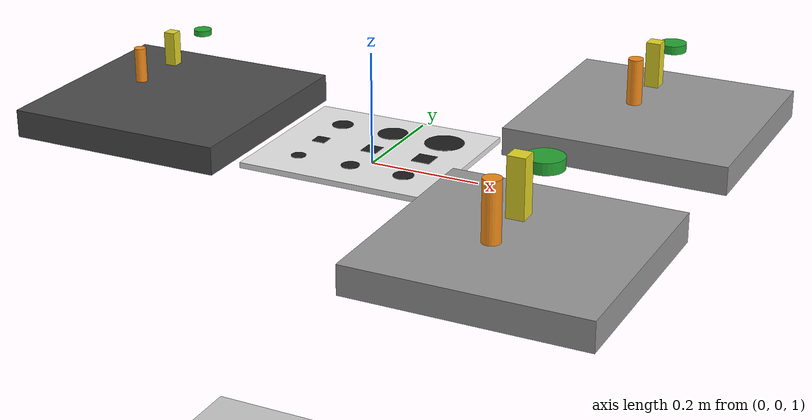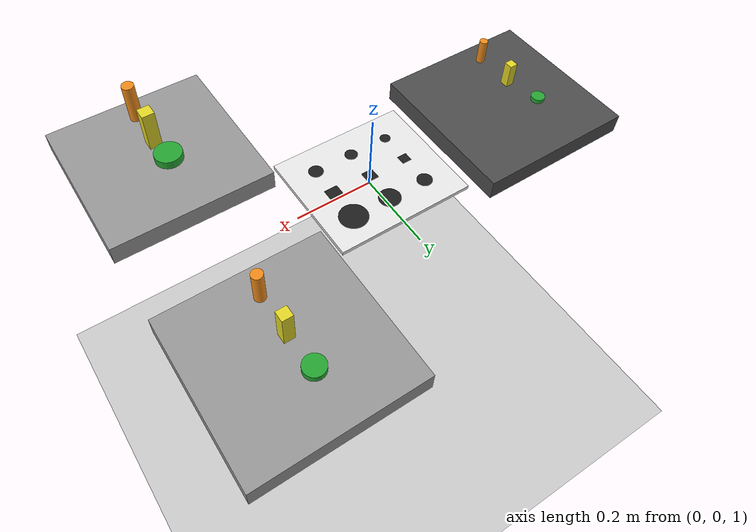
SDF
<sdf version="1.4">
 <world name="default">
  <include><uri>model://ground_plane</uri></include>
  <include><uri>model://sun</uri></include>
  <plugin name="gazebo_ros_state" filename="libgazebo_ros_state.so">
   <ros><namespace>/</namespace></ros>
   <update_rate>50</update_rate>
  </plugin>
  <plugin name="gazebo_link_attacher" filename="libgazebo_link_attacher.so"/>
  <model name="assembly_board_v1">
   <static>true</static>
   <pose>0 0 1.02 0 0 0</pose>
   <link name="link">
    <collision name="collision"><geometry><box><size>0.35 0.3 0.01</size></box></geometry></collision>
    <visual name="visual_top">
     <geometry><box><size>0.35 0.3 0.01</size></box></geometry>
     <material>
      <script><uri>file://media/materials/scripts/gazebo.material</uri><name>Gazebo/White</name></script>
     </material>
    </visual>
    <visual name="socket_SG">
     <pose>-0.10 0.08 0.006 0 0 0</pose>
     <geometry><cylinder><radius>0.019</radius><length>0.001</length></cylinder></geometry>
     <material>
      <script><uri>file://media/materials/scripts/gazebo.material</uri><name>Gazebo/Black</name></script>
     </material>
    </visual>
    <visual name="socket_MG">
     <pose>0.0 0.08 0.006 0 0 0</pose>
     <geometry><cylinder><radius>0.027</radius><length>0.001</length></cylinder></geometry>
     <material>
      <script><uri>file://media/materials/scripts/gazebo.material</uri><name>Gazebo/Black</name></script>
     </material>
    </visual>
    <visual name="socket_LG">
     <pose>0.10 0.08 0.006 0 0 0</pose>
     <geometry><cylinder><radius>0.035</radius><length>0.001</length></cylinder></geometry>
     <material>
      <script><uri>file://media/materials/scripts/gazebo.material</uri><name>Gazebo/Black</name></script>
     </material>
    </visual>
    <visual name="socket_SRP">
     <pose>-0.10 0.0 0.006 0 0 0</pose>
     <geometry><box><size>0.024 0.024 0.001</size></box></geometry>
     <material>
      <script><uri>file://media/materials/scripts/gazebo.material</uri><name>Gazebo/Black</name></script>
     </material>
    </visual>
    <visual name="socket_MRP">
     <pose>0.0 0.0 0.006 0 0 0</pose>
     <geometry><box><size>0.029 0.029 0.001</size></box></geometry>
     <material>
      <script><uri>file://media/materials/scripts/gazebo.material</uri><name>Gazebo/Black</name></script>
     </material>
    </visual>
    <visual name="socket_LRP">
     <pose>0.10 0.0 0.006 0 0 0</pose>
     <geometry><box><size>0.034 0.034 0.001</size></box></geometry>
     <material>
      <script><uri>file://media/materials/scripts/gazebo.material</uri><name>Gazebo/Black</name></script>
     </material>
    </visual>
    <visual name="socket_SCP">
     <pose>-0.10 -0.08 0.006 0 0 0</pose>
     <geometry><cylinder><radius>0.013</radius><length>0.001</length></cylinder></geometry>
     <material>
      <script><uri>file://media/materials/scripts/gazebo.material</uri><name>Gazebo/Black</name></script>
     </material>
    </visual>
    <visual name="socket_MCP">
     <pose>0.0 -0.08 0.006 0 0 0</pose>
     <geometry><cylinder><radius>0.016</radius><length>0.001</length></cylinder></geometry>
     <material>
      <script><uri>file://media/materials/scripts/gazebo.material</uri><name>Gazebo/Black</name></script>
     </material>
    </visual>
    <visual name="socket_LCP">
     <pose>0.10 -0.08 0.006 0 0 0</pose>
     <geometry><cylinder><radius>0.018</radius><length>0.001</length></cylinder></geometry>
     <material>
      <script><uri>file://media/materials/scripts/gazebo.material</uri><name>Gazebo/Black</name></script>
     </material>
    </visual>
   </link>
   <link name="anchor_gear_small">
    <pose>-0.10 0.08 -0.02 0 0 0</pose>
    <collision name="collision"><geometry><box><size>0.001 0.001 0.001</size></box></geometry></collision>
   </link>
   <link name="anchor_gear_medium">
    <pose>0.0 0.08 -0.02 0 0 0</pose>
    <collision name="collision"><geometry><box><size>0.001 0.001 0.001</size></box></geometry></collision>
   </link>
   <link name="anchor_gear_large">
    <pose>0.10 0.08 -0.02 0 0 0</pose>
    <collision name="collision"><geometry><box><size>0.001 0.001 0.001</size></box></geometry></collision>
   </link>
   <link name="anchor_rect_pin_small">
    <pose>-0.10 0.0 -0.02 0 0 0</pose>
    <collision name="collision"><geometry><box><size>0.001 0.001 0.001</size></box></geometry></collision>
   </link>
   <link name="anchor_rect_pin_medium">
    <pose>0.0 0.0 -0.02 0 0 0</pose>
    <collision name="collision"><geometry><box><size>0.001 0.001 0.001</size></box></geometry></collision>
   </link>
   <link name="anchor_rect_pin_large">
    <pose>0.10 0.0 -0.02 0 0 0</pose>
    <collision name="collision"><geometry><box><size>0.001 0.001 0.001</size></box></geometry></collision>
   </link>
   <link name="anchor_circ_pin_small">
    <pose>-0.10 -0.08 -0.02 0 0 0</pose>
    <collision name="collision"><geometry><box><size>0.001 0.001 0.001</size></box></geometry></collision>
   </link>
   <link name="anchor_circ_pin_medium">
    <pose>0.0 -0.08 -0.02 0 0 0</pose>
    <collision name="collision"><geometry><box><size>0.001 0.001 0.001</size></box></geometry></collision>
   </link>
   <link name="anchor_circ_pin_large">
    <pose>0.10 -0.08 -0.02 0 0 0</pose>
    <collision name="collision"><geometry><box><size>0.001 0.001 0.001</size></box></geometry></collision>
   </link>
  </model>
  <model name="cam_mk3">
   <static>true</static>
   <pose>-0.4 0 1.40 0 1.5708 0</pose>
   <link name="link">
    <visual name="visual">
     <geometry><box><size>0.03 0.03 0.03</size></box></geometry>
     <material>
      <script><uri>file://media/materials/scripts/gazebo.material</uri><name>Gazebo/Blue</name></script>
     </material>
     <transparency>1.0</transparency>
    </visual>
    <sensor type="depth" name="depth_camera">
     <update_rate>15.0</update_rate>
     <camera>
      <horizontal_fov>0.8</horizontal_fov>
      <image><width>640</width><height>480</height><format>R8G8B8</format></image>
      <clip><near>0.05</near><far>2.0</far></clip>
     </camera>
     <plugin name="camera_controller" filename="libgazebo_ros_camera.so">
      <ros><namespace>cam_mk3</namespace></ros>
      <camera_name>cam_mk3</camera_name>
      <frame_name>cam_mk3_link</frame_name>
     </plugin>
    </sensor>
   </link>
  </model>
  <model name="cam_mk4_1">
   <static>true</static>
   <pose>0.4 0.3 1.40 0 1.5708 0</pose>
   <link name="link">
    <visual name="visual">
     <geometry><box><size>0.03 0.03 0.03</size></box></geometry>
     <material>
      <script><uri>file://media/materials/scripts/gazebo.material</uri><name>Gazebo/Blue</name></script>
     </material>
     <transparency>1.0</transparency>
    </visual>
    <sensor type="depth" name="depth_camera">
     <update_rate>15.0</update_rate>
     <camera>
      <horizontal_fov>0.8</horizontal_fov>
      <image><width>640</width><height>480</height><format>R8G8B8</format></image>
      <clip><near>0.05</near><far>2.0</far></clip>
     </camera>
     <plugin name="camera_controller" filename="libgazebo_ros_camera.so">
      <ros><namespace>cam_mk4_1</namespace></ros>
      <camera_name>cam_mk4_1</camera_name>
      <frame_name>cam_mk4_1_link</frame_name>
     </plugin>
    </sensor>
   </link>
  </model>
  <model name="cam_mk4_2">
   <static>true</static>
   <pose>0.4 -0.3 1.40 0 1.5708 0</pose>
   <link name="link">
    <visual name="visual">
     <geometry><box><size>0.03 0.03 0.03</size></box></geometry>
     <material>
      <script><uri>file://media/materials/scripts/gazebo.material</uri><name>Gazebo/Blue</name></script>
     </material>
     <transparency>1.0</transparency>
    </visual>
    <sensor type="depth" name="depth_camera">
     <update_rate>15.0</update_rate>
     <camera>
      <horizontal_fov>0.8</horizontal_fov>
      <image><width>640</width><height>480</height><format>R8G8B8</format></image>
      <clip><near>0.05</near><far>2.0</far></clip>
     </camera>
     <plugin name="camera_controller" filename="libgazebo_ros_camera.so">
      <ros><namespace>cam_mk4_2</namespace></ros>
      <camera_name>cam_mk4_2</camera_name>
      <frame_name>cam_mk4_2_link</frame_name>
     </plugin>
    </sensor>
   </link>
  </model>
  <model name="cam_assembly">
   <static>true</static>
   <pose>0 0 1.40 0 1.5708 0</pose>
   <link name="link">
    <visual name="visual">
     <geometry><box><size>0.03 0.03 0.03</size></box></geometry>
     <material>
      <script><uri>file://media/materials/scripts/gazebo.material</uri><name>Gazebo/Red</name></script>
     </material>
     <transparency>1.0</transparency>
    </visual>
    <sensor type="depth" name="depth_camera">
     <update_rate>15.0</update_rate>
     <camera>
      <horizontal_fov>0.8</horizontal_fov>
      <image><width>640</width><height>480</height><format>R8G8B8</format></image>
      <clip><near>0.05</near><far>2.0</far></clip>
     </camera>
     <plugin name="camera_controller" filename="libgazebo_ros_camera.so">
      <ros><namespace>cam_assembly</namespace></ros>
      <camera_name>cam_assembly</camera_name>
      <frame_name>cam_assembly_link</frame_name>
     </plugin>
    </sensor>
   </link>
  </model>
  <model name="prusa_mk3">
   <static>true</static>
   <pose>-0.4 0 1.04 0 0 0</pose>
   <link name="link">
    <collision name="collision"><geometry><box><size>0.4 0.4 0.05</size></box></geometry></collision>
    <visual name="visual">
     <geometry><box><size>0.4 0.4 0.05</size></box></geometry>
     <material>
      <script><uri>file://media/materials/scripts/gazebo.material</uri><name>Gazebo/DarkGrey</name></script>
     </material>
    </visual>
   </link>
  </model>
  <model name="prusa_mk4_1">
   <static>true</static>
   <pose>0.4 0.3 1.04 0 0 0</pose>
   <link name="link">
    <collision name="collision"><geometry><box><size>0.4 0.4 0.05</size></box></geometry></collision>
    <visual name="visual">
     <geometry><box><size>0.4 0.4 0.05</size></box></geometry>
     <material>
      <script><uri>file://media/materials/scripts/gazebo.material</uri><name>Gazebo/Grey</name></script>
     </material>
    </visual>
   </link>
  </model>
  <model name="prusa_mk4_2">
   <static>true</static>
   <pose>0.4 -0.3 1.04 0 0 0</pose>
   <link name="link">
    <collision name="collision"><geometry><box><size>0.4 0.4 0.05</size></box></geometry></collision>
    <visual name="visual">
     <geometry><box><size>0.4 0.4 0.05</size></box></geometry>
     <material>
      <script><uri>file://media/materials/scripts/gazebo.material</uri><name>Gazebo/Grey</name></script>
     </material>
    </visual>
   </link>
  </model>
  <model name="gear_small">
   <pose>-0.4 0.1 1.15 0 0 0</pose>
   <link name="link">
    <inertial><mass>0.05</mass><inertia><ixx>0.0001</ixx><iyy>0.0001</iyy><izz>0.0001</izz></inertia></inertial>
    <collision name="collision">
     <geometry><cylinder><radius>0.016</radius><length>0.01</length></cylinder></geometry>
     <surface>
      <friction><ode><mu>0.5</mu><mu2>0.5</mu2></ode></friction>
      <contact><ode><kp>20000.0</kp><kd>8.0</kd><max_vel>0.05</max_vel><min_depth>0.0005</min_depth></ode></contact>
     </surface>
    </collision>
    <visual name="visual">
     <geometry><cylinder><radius>0.016</radius><length>0.01</length></cylinder></geometry>
     <material>
      <script><uri>file://media/materials/scripts/gazebo.material</uri><name>Gazebo/Green</name></script>
     </material>
    </visual>
   </link>
  </model>
  <model name="rect_pin_small">
   <pose>-0.4 0.0 1.15 0 0 0</pose>
   <link name="link">
    <inertial><mass>0.05</mass><inertia><ixx>0.0001</ixx><iyy>0.0001</iyy><izz>0.0001</izz></inertia></inertial>
    <collision name="collision">
     <geometry><box><size>0.02 0.02 0.06</size></box></geometry>
     <surface>
      <friction><ode><mu>0.5</mu><mu2>0.5</mu2></ode></friction>
      <contact><ode><kp>20000.0</kp><kd>8.0</kd><max_vel>0.05</max_vel><min_depth>0.0005</min_depth></ode></contact>
     </surface>
    </collision>
    <visual name="visual">
     <geometry><box><size>0.02 0.02 0.06</size></box></geometry>
     <material>
      <script><uri>file://media/materials/scripts/gazebo.material</uri><name>Gazebo/Yellow</name></script>
     </material>
    </visual>
   </link>
  </model>
  <model name="circ_pin_small">
   <pose>-0.4 -0.1 1.15 0 0 0</pose>
   <link name="link">
    <inertial><mass>0.05</mass><inertia><ixx>0.0001</ixx><iyy>0.0001</iyy><izz>0.0001</izz></inertia></inertial>
    <collision name="collision">
     <geometry><cylinder><radius>0.01</radius><length>0.06</length></cylinder></geometry>
     <surface>
      <friction><ode><mu>0.5</mu><mu2>0.5</mu2></ode></friction>
      <contact><ode><kp>20000.0</kp><kd>8.0</kd><max_vel>0.05</max_vel><min_depth>0.0005</min_depth></ode></contact>
     </surface>
    </collision>
    <visual name="visual">
     <geometry><cylinder><radius>0.01</radius><length>0.06</length></cylinder></geometry>
     <material>
      <script><uri>file://media/materials/scripts/gazebo.material</uri><name>Gazebo/Orange</name></script>
     </material>
    </visual>
   </link>
  </model>
  <model name="gear_medium">
   <pose>0.4 0.4 1.15 0 0 0</pose>
   <link name="link">
    <inertial><mass>0.10</mass><inertia><ixx>0.0002</ixx><iyy>0.0002</iyy><izz>0.0002</izz></inertia></inertial>
    <collision name="collision">
     <geometry><cylinder><radius>0.024</radius><length>0.015</length></cylinder></geometry>
     <surface>
      <friction><ode><mu>0.5</mu><mu2>0.5</mu2></ode></friction>
      <contact><ode><kp>20000.0</kp><kd>8.0</kd><max_vel>0.05</max_vel><min_depth>0.0005</min_depth></ode></contact>
     </surface>
    </collision>
    <visual name="visual">
     <geometry><cylinder><radius>0.024</radius><length>0.015</length></cylinder></geometry>
     <material>
      <script><uri>file://media/materials/scripts/gazebo.material</uri><name>Gazebo/Green</name></script>
     </material>
    </visual>
   </link>
  </model>
  <model name="rect_pin_medium">
   <pose>0.4 0.3 1.15 0 0 0</pose>
   <link name="link">
    <inertial><mass>0.07</mass><inertia><ixx>0.0001</ixx><iyy>0.0001</iyy><izz>0.0001</izz></inertia></inertial>
    <collision name="collision">
     <geometry><box><size>0.025 0.025 0.08</size></box></geometry>
     <surface>
      <friction><ode><mu>0.5</mu><mu2>0.5</mu2></ode></friction>
      <contact><ode><kp>20000.0</kp><kd>8.0</kd><max_vel>0.05</max_vel><min_depth>0.0005</min_depth></ode></contact>
     </surface>
    </collision>
    <visual name="visual">
     <geometry><box><size>0.025 0.025 0.08</size></box></geometry>
     <material>
      <script><uri>file://media/materials/scripts/gazebo.material</uri><name>Gazebo/Yellow</name></script>
     </material>
    </visual>
   </link>
  </model>
  <model name="circ_pin_medium">
   <pose>0.4 0.2 1.15 0 0 0</pose>
   <link name="link">
    <inertial><mass>0.07</mass><inertia><ixx>0.0001</ixx><iyy>0.0001</iyy><izz>0.0001</izz></inertia></inertial>
    <collision name="collision">
     <geometry><cylinder><radius>0.013</radius><length>0.08</length></cylinder></geometry>
     <surface>
      <friction><ode><mu>0.5</mu><mu2>0.5</mu2></ode></friction>
      <contact><ode><kp>20000.0</kp><kd>8.0</kd><max_vel>0.05</max_vel><min_depth>0.0005</min_depth></ode></contact>
     </surface>
    </collision>
    <visual name="visual">
     <geometry><cylinder><radius>0.013</radius><length>0.08</length></cylinder></geometry>
     <material>
      <script><uri>file://media/materials/scripts/gazebo.material</uri><name>Gazebo/Orange</name></script>
     </material>
    </visual>
   </link>
  </model>
  <model name="gear_large">
   <pose>0.4 -0.2 1.15 0 0 0</pose>
   <link name="link">
    <inertial><mass>0.15</mass><inertia><ixx>0.0003</ixx><iyy>0.0003</iyy><izz>0.0003</izz></inertia></inertial>
    <collision name="collision">
     <geometry><cylinder><radius>0.032</radius><length>0.02</length></cylinder></geometry>
     <surface>
      <friction><ode><mu>0.5</mu><mu2>0.5</mu2></ode></friction>
      <contact><ode><kp>20000.0</kp><kd>8.0</kd><max_vel>0.05</max_vel><min_depth>0.0005</min_depth></ode></contact>
     </surface>
    </collision>
    <visual name="visual">
     <geometry><cylinder><radius>0.032</radius><length>0.02</length></cylinder></geometry>
     <material>
      <script><uri>file://media/materials/scripts/gazebo.material</uri><name>Gazebo/Green</name></script>
     </material>
    </visual>
   </link>
  </model>
  <model name="rect_pin_large">
   <pose>0.4 -0.3 1.15 0 0 0</pose>
   <link name="link">
    <inertial><mass>0.09</mass><inertia><ixx>0.0001</ixx><iyy>0.0001</iyy><izz>0.0001</izz></inertia></inertial>
    <collision name="collision">
     <geometry><box><size>0.03 0.03 0.1</size></box></geometry>
     <surface>
      <friction><ode><mu>0.5</mu><mu2>0.5</mu2></ode></friction>
      <contact><ode><kp>20000.0</kp><kd>8.0</kd><max_vel>0.05</max_vel><min_depth>0.0005</min_depth></ode></contact>
     </surface>
    </collision>
    <visual name="visual">
     <geometry><box><size>0.03 0.03 0.1</size></box></geometry>
     <material>
      <script><uri>file://media/materials/scripts/gazebo.material</uri><name>Gazebo/Yellow</name></script>
     </material>
    </visual>
   </link>
  </model>
  <model name="circ_pin_large">
   <pose>0.4 -0.4 1.15 0 0 0</pose>
   <link name="link">
    <inertial><mass>0.09</mass><inertia><ixx>0.0001</ixx><iyy>0.0001</iyy><izz>0.0001</izz></inertia></inertial>
    <collision name="collision">
     <geometry><cylinder><radius>0.015</radius><length>0.10</length></cylinder></geometry>
     <surface>
      <friction><ode><mu>0.5</mu><mu2>0.5</mu2></ode></friction>
      <contact><ode><kp>20000.0</kp><kd>8.0</kd><max_vel>0.05</max_vel><min_depth>0.0005</min_depth></ode></contact>
     </surface>
    </collision>
    <visual name="visual">
     <geometry><cylinder><radius>0.015</radius><length>0.10</length></cylinder></geometry>
     <material>
      <script><uri>file://media/materials/scripts/gazebo.material</uri><name>Gazebo/Orange</name></script>
     </material>
    </visual>
   </link>
  </model>
  <physics type="ode">
   <max_step_size>0.001</max_step_size>
   <real_time_factor>1</real_time_factor>
   <real_time_update_rate>0</real_time_update_rate>
   <gravity>0 0 -9.81</gravity>
  </physics>
 </world>
</sdf>
